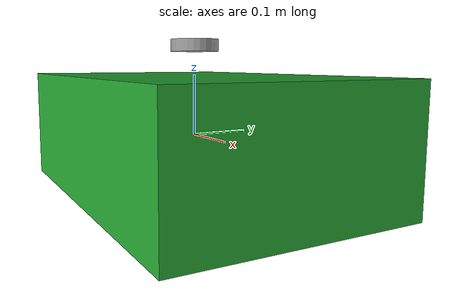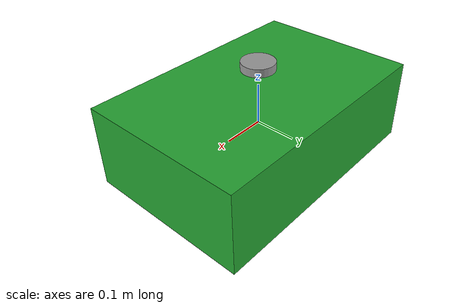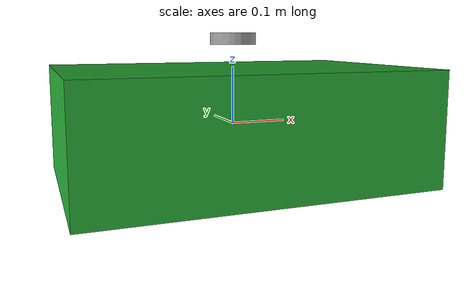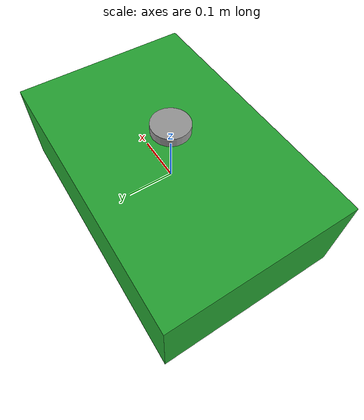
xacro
<?xml version="1.0"?>
<robot xmlns:xacro="http://www.ros.org/wiki/xacro" name="mobile_robot">

  <!-- Définition des propriétés pour la taille du robot -->
  <xacro:property name="length" value="0.6"/>
  <xacro:property name="width" value="0.4"/>
  <xacro:property name="height" value="0.2"/>
  <xacro:property name="wheel_radius" value="0.05"/>
  <xacro:property name="wheel_width" value="0.02"/>
  <xacro:property name="lidar_height" value="0.15"/>

  <!-- Définition de la base du robot -->
  <link name="base_link">
    <inertial>
      <mass value="5.0"/>
      <inertia ixx="0.1" ixy="0.0" ixz="0.0" iyy="0.1" iyz="0.0" izz="0.1"/>
    </inertial>
    <visual>
      <geometry>
        <box size="${length} ${width} ${height}"/>
      </geometry>
      <material name="green"/>
    </visual>
    <collision>
      <geometry>
        <box size="${length} ${width} ${height}"/>
      </geometry>
    </collision>
  </link>

  <!-- Définition des roues -->
  <xacro:macro name="wheel" params="name x y">
    <link name="${name}">
      <visual>
        <geometry>
          <cylinder radius="${wheel_radius}" length="${wheel_width}"/>
        </geometry>
        <material name="black"/>
      </visual>
      <collision>
        <geometry>
          <cylinder radius="${wheel_radius}" length="${wheel_width}"/>
        </geometry>
      </collision>
    </link>
    <joint name="${name}_joint" type="revolute">
      <parent link="base_link"/>
      <child link="${name}"/>
      <origin xyz="${x} ${y} 0" rpy="0 0 0"/>
      <axis xyz="0 0 1"/>
      <limit effort="10.0" velocity="10.0"/>
    </joint>
  </xacro:macro>

  <!-- Positionnement des roues -->
  <xacro:wheel name="front_left_wheel" x="${length/4}" y="${width/4}"/>
  <xacro:wheel name="front_right_wheel" x="${length/4}" y="${-width/4}"/>
  <xacro:wheel name="rear_left_wheel" x="${-length/4}" y="${width/4}"/>
  <xacro:wheel name="rear_right_wheel" x="${-length/4}" y="${-width/4}"/>

  <!-- Définition du LIDAR -->
  <link name="lidar_link">
    <visual>
      <geometry>
        <cylinder radius="0.04" length="0.02"/>
      </geometry>
      <material name="gray"/>
    </visual>
    <collision>
      <geometry>
        <cylinder radius="0.04" length="0.02"/>
      </geometry>
    </collision>
  </link>
  <joint name="lidar_joint" type="fixed">
    <parent link="base_link"/>
    <child link="lidar_link"/>
    <origin xyz="0 0 ${lidar_height}" rpy="0 0 0"/>
  </joint>

  <!-- Définition du capteur LIDAR -->
  <gazebo>
    <sensor name="lidar" type="ray">
      <pose>0 0 ${lidar_height} 0 0 0</pose>
      <ray>
        <scan>
          <horizontal>
            <samples>720</samples>
            <resolution>1</resolution>
            <min_angle>-1.5708</min_angle>
            <max_angle>1.5708</max_angle>
          </horizontal>
        </scan>
        <range>
          <min>0.12</min>
          <max>12.0</max>
          <resolution>0.01</resolution>
        </range>
      </ray>
      <plugin name="lidar_plugin" filename="libgazebo_ros_ray_sensor.so">
        <ros>
          <namespace>/</namespace>
          <remapping>scan:=/scan</remapping>
        </ros>
      </plugin>
    </sensor>
  </gazebo>

</robot>
